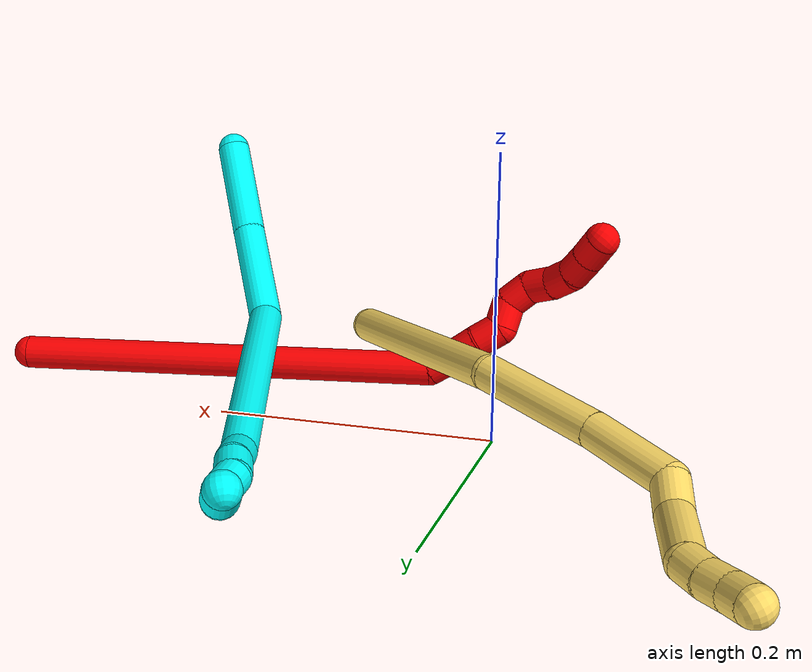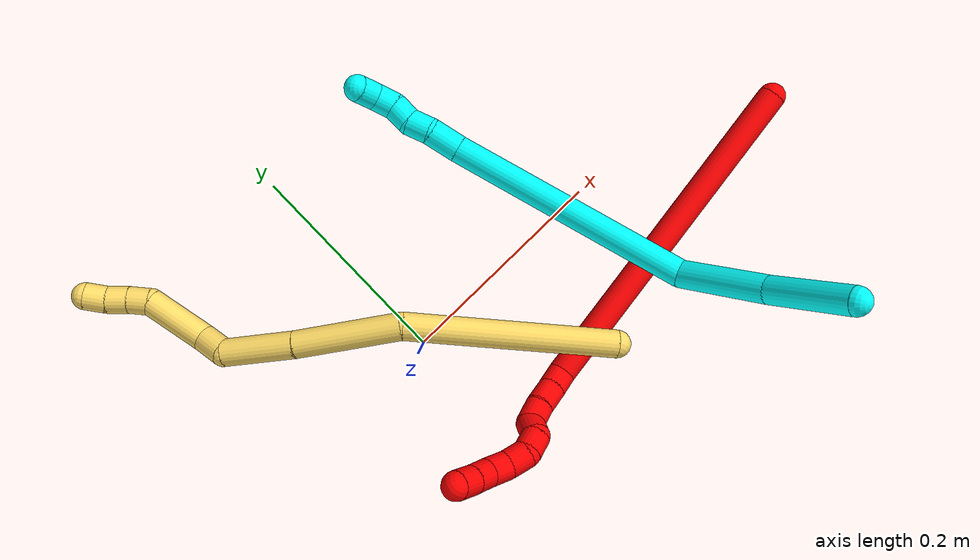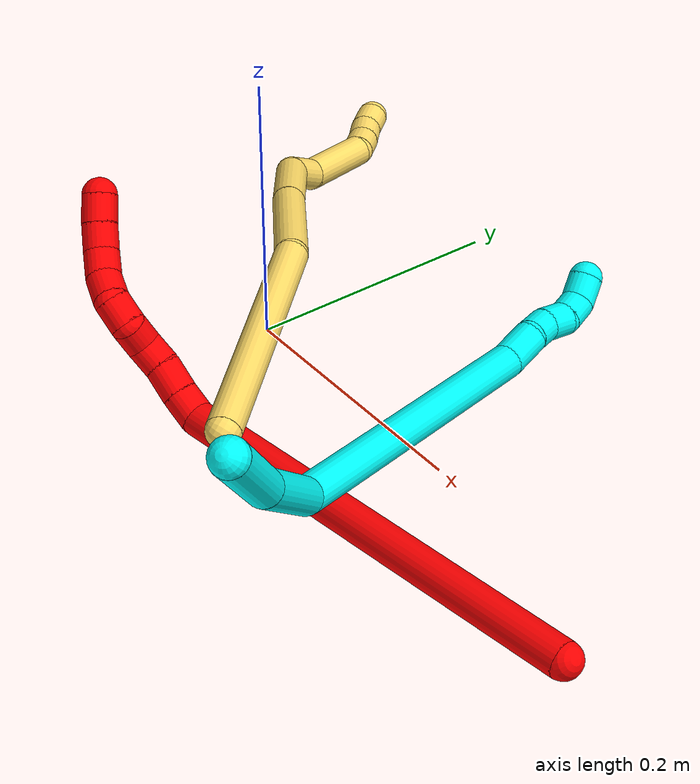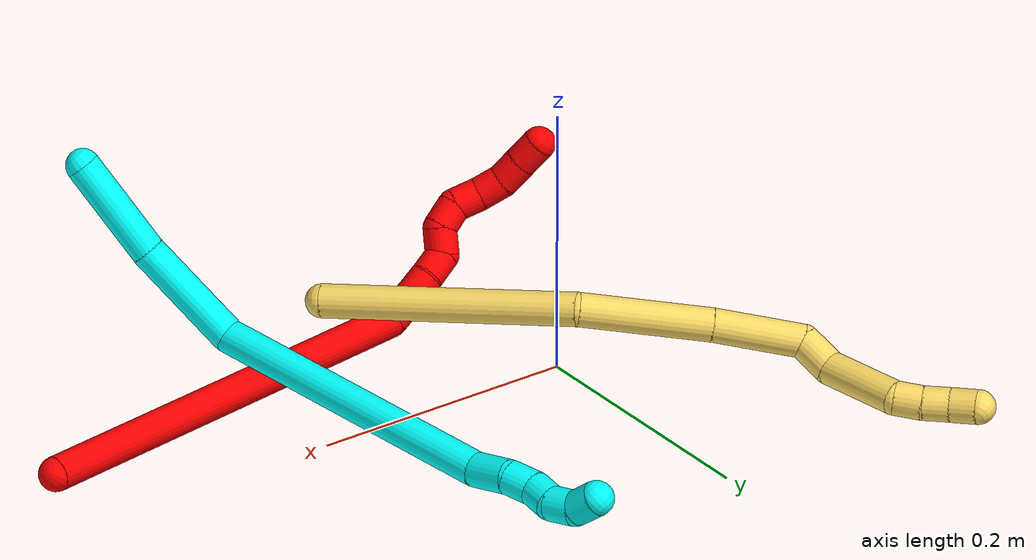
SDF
<sdf version="1.7">
 <world name="default">
  <model name="2">
   <static>0</static>
   <link name="2">
    <collision name="collision-cylinder-e_1_1_4">
     <pose>-0.099269 -0.007704 -0.123444 3.07927 -0.676323 -2.96477</pose>
     <geometry><cylinder><radius>0.0125</radius><length>0.317188</length></cylinder></geometry>
     <surface>
      <friction><ode><mu>1.16</mu><mu2>1.16</mu2><slip1>0</slip1><slip2>0</slip2></ode></friction>
      <contact><ode><kp>1e+06</kp><kd>1</kd><max_vel>0</max_vel><min_depth>0.001</min_depth></ode></contact>
     </surface>
    </collision>
    <visual name="visual-cylinder-e_1_1_4">
     <pose>-0.099269 -0.007704 -0.123444 3.07927 -0.676323 -2.96477</pose>
     <geometry><cylinder><radius>0.0125</radius><length>0.317188</length></cylinder></geometry>
     <material><ambient>1 0 0 1</ambient></material>
    </visual>
    <collision name="collision-cylinder-e_2_4_5">
     <pose>-0.208018 -0.015647 -0.25033 3.07217 -1.22181 -3.04249</pose>
     <geometry><cylinder><radius>0.0125</radius><length>0.020178</length></cylinder></geometry>
     <surface>
      <friction><ode><mu>1.16</mu><mu2>1.16</mu2><slip1>0</slip1><slip2>0</slip2></ode></friction>
      <contact><ode><kp>1e+06</kp><kd>1</kd><max_vel>0</max_vel><min_depth>0.001</min_depth></ode></contact>
     </surface>
    </collision>
    <visual name="visual-cylinder-e_2_4_5">
     <pose>-0.208018 -0.015647 -0.25033 3.07217 -1.22181 -3.04249</pose>
     <geometry><cylinder><radius>0.0125</radius><length>0.020178</length></cylinder></geometry>
     <material><ambient>1 0 0 1</ambient></material>
    </visual>
    <collision name="collision-cylinder-e_3_5_6">
     <pose>-0.228354 -0.015614 -0.256809 -3.05229 -1.29688 3.02379</pose>
     <geometry><cylinder><radius>0.0125</radius><length>0.02255</length></cylinder></geometry>
     <surface>
      <friction><ode><mu>1.16</mu><mu2>1.16</mu2><slip1>0</slip1><slip2>0</slip2></ode></friction>
      <contact><ode><kp>1e+06</kp><kd>1</kd><max_vel>0</max_vel><min_depth>0.001</min_depth></ode></contact>
     </surface>
    </collision>
    <visual name="visual-cylinder-e_3_5_6">
     <pose>-0.228354 -0.015614 -0.256809 -3.05229 -1.29688 3.02379</pose>
     <geometry><cylinder><radius>0.0125</radius><length>0.02255</length></cylinder></geometry>
     <material><ambient>1 0 0 1</ambient></material>
    </visual>
    <collision name="collision-cylinder-e_4_6_7">
     <pose>-0.248623 -0.016423 -0.263164 2.82643 -1.21596 -2.69263</pose>
     <geometry><cylinder><radius>0.0125</radius><length>0.02008</length></cylinder></geometry>
     <surface>
      <friction><ode><mu>1.16</mu><mu2>1.16</mu2><slip1>0</slip1><slip2>0</slip2></ode></friction>
      <contact><ode><kp>1e+06</kp><kd>1</kd><max_vel>0</max_vel><min_depth>0.001</min_depth></ode></contact>
     </surface>
    </collision>
    <visual name="visual-cylinder-e_4_6_7">
     <pose>-0.248623 -0.016423 -0.263164 2.82643 -1.21596 -2.69263</pose>
     <geometry><cylinder><radius>0.0125</radius><length>0.02008</length></cylinder></geometry>
     <material><ambient>1 0 0 1</ambient></material>
    </visual>
    <collision name="collision-cylinder-e_5_7_8">
     <pose>-0.266471 -0.021397 -0.262771 0.809563 -1.00316 -0.461504</pose>
     <geometry><cylinder><radius>0.0125</radius><length>0.020003</length></cylinder></geometry>
     <surface>
      <friction><ode><mu>1.16</mu><mu2>1.16</mu2><slip1>0</slip1><slip2>0</slip2></ode></friction>
      <contact><ode><kp>1e+06</kp><kd>1</kd><max_vel>0</max_vel><min_depth>0.001</min_depth></ode></contact>
     </surface>
    </collision>
    <visual name="visual-cylinder-e_5_7_8">
     <pose>-0.266471 -0.021397 -0.262771 0.809563 -1.00316 -0.461504</pose>
     <geometry><cylinder><radius>0.0125</radius><length>0.020003</length></cylinder></geometry>
     <material><ambient>1 0 0 1</ambient></material>
    </visual>
    <collision name="collision-cylinder-e_6_8_9">
     <pose>-0.284694 -0.025765 -0.261043 2.90639 -1.36561 -2.85308</pose>
     <geometry><cylinder><radius>0.0125</radius><length>0.02</length></cylinder></geometry>
     <surface>
      <friction><ode><mu>1.16</mu><mu2>1.16</mu2><slip1>0</slip1><slip2>0</slip2></ode></friction>
      <contact><ode><kp>1e+06</kp><kd>1</kd><max_vel>0</max_vel><min_depth>0.001</min_depth></ode></contact>
     </surface>
    </collision>
    <visual name="visual-cylinder-e_6_8_9">
     <pose>-0.284694 -0.025765 -0.261043 2.90639 -1.36561 -2.85308</pose>
     <geometry><cylinder><radius>0.0125</radius><length>0.02</length></cylinder></geometry>
     <material><ambient>1 0 0 1</ambient></material>
    </visual>
    <collision name="collision-cylinder-e_7_9_10">
     <pose>-0.302246 -0.022595 -0.268169 -2.52517 -0.888558 1.96265</pose>
     <geometry><cylinder><radius>0.0125</radius><length>0.02</length></cylinder></geometry>
     <surface>
      <friction><ode><mu>1.16</mu><mu2>1.16</mu2><slip1>0</slip1><slip2>0</slip2></ode></friction>
      <contact><ode><kp>1e+06</kp><kd>1</kd><max_vel>0</max_vel><min_depth>0.001</min_depth></ode></contact>
     </surface>
    </collision>
    <visual name="visual-cylinder-e_7_9_10">
     <pose>-0.302246 -0.022595 -0.268169 -2.52517 -0.888558 1.96265</pose>
     <geometry><cylinder><radius>0.0125</radius><length>0.02</length></cylinder></geometry>
     <material><ambient>1 0 0 1</ambient></material>
    </visual>
    <collision name="collision-cylinder-e_8_10_11">
     <pose>-0.318296 -0.014059 -0.276032 -2.0781 -0.977022 1.46946</pose>
     <geometry><cylinder><radius>0.0125</radius><length>0.02</length></cylinder></geometry>
     <surface>
      <friction><ode><mu>1.16</mu><mu2>1.16</mu2><slip1>0</slip1><slip2>0</slip2></ode></friction>
      <contact><ode><kp>1e+06</kp><kd>1</kd><max_vel>0</max_vel><min_depth>0.001</min_depth></ode></contact>
     </surface>
    </collision>
    <visual name="visual-cylinder-e_8_10_11">
     <pose>-0.318296 -0.014059 -0.276032 -2.0781 -0.977022 1.46946</pose>
     <geometry><cylinder><radius>0.0125</radius><length>0.02</length></cylinder></geometry>
     <material><ambient>1 0 0 1</ambient></material>
    </visual>
    <collision name="collision-cylinder-e_9_11_12">
     <pose>-0.335699 -0.005065 -0.278477 -1.50433 -1.14694 1.08717</pose>
     <geometry><cylinder><radius>0.0125</radius><length>0.02</length></cylinder></geometry>
     <surface>
      <friction><ode><mu>1.16</mu><mu2>1.16</mu2><slip1>0</slip1><slip2>0</slip2></ode></friction>
      <contact><ode><kp>1e+06</kp><kd>1</kd><max_vel>0</max_vel><min_depth>0.001</min_depth></ode></contact>
     </surface>
    </collision>
    <visual name="visual-cylinder-e_9_11_12">
     <pose>-0.335699 -0.005065 -0.278477 -1.50433 -1.14694 1.08717</pose>
     <geometry><cylinder><radius>0.0125</radius><length>0.02</length></cylinder></geometry>
     <material><ambient>1 0 0 1</ambient></material>
    </visual>
    <collision name="collision-cylinder-e_10_12_2">
     <pose>-0.353707 0.003549 -0.277441 -1.40308 -1.09566 0.951953</pose>
     <geometry><cylinder><radius>0.0125</radius><length>0.02</length></cylinder></geometry>
     <surface>
      <friction><ode><mu>1.16</mu><mu2>1.16</mu2><slip1>0</slip1><slip2>0</slip2></ode></friction>
      <contact><ode><kp>1e+06</kp><kd>1</kd><max_vel>0</max_vel><min_depth>0.001</min_depth></ode></contact>
     </surface>
    </collision>
    <visual name="visual-cylinder-e_10_12_2">
     <pose>-0.353707 0.003549 -0.277441 -1.40308 -1.09566 0.951953</pose>
     <geometry><cylinder><radius>0.0125</radius><length>0.02</length></cylinder></geometry>
     <material><ambient>1 0 0 1</ambient></material>
    </visual>
    <collision name="collision-sphere-2">
     <pose>-0.3626 0.00806 -0.276677 0 -0 0</pose>
     <geometry><sphere><radius>0.0125</radius></sphere></geometry>
     <surface>
      <friction><ode><mu>1.16</mu><mu2>1.16</mu2><slip1>0</slip1><slip2>0</slip2></ode></friction>
      <contact><ode><kp>1e+06</kp><kd>1</kd><max_vel>0</max_vel><min_depth>0.001</min_depth></ode></contact>
     </surface>
    </collision>
    <visual name="visual-sphere-2">
     <pose>-0.3626 0.00806 -0.276677 0 -0 0</pose>
     <geometry><sphere><radius>0.0125</radius></sphere></geometry>
     <material><ambient>1 0 0 1</ambient></material>
    </visual>
    <collision name="collision-sphere-12">
     <pose>-0.344815 -0.000961 -0.278204 0 -0 0</pose>
     <geometry><sphere><radius>0.0125</radius></sphere></geometry>
     <surface>
      <friction><ode><mu>1.16</mu><mu2>1.16</mu2><slip1>0</slip1><slip2>0</slip2></ode></friction>
      <contact><ode><kp>1e+06</kp><kd>1</kd><max_vel>0</max_vel><min_depth>0.001</min_depth></ode></contact>
     </surface>
    </collision>
    <visual name="visual-sphere-12">
     <pose>-0.344815 -0.000961 -0.278204 0 -0 0</pose>
     <geometry><sphere><radius>0.0125</radius></sphere></geometry>
     <material><ambient>1 0 0 1</ambient></material>
    </visual>
    <collision name="collision-sphere-11">
     <pose>-0.326584 -0.009169 -0.278751 0 -0 0</pose>
     <geometry><sphere><radius>0.0125</radius></sphere></geometry>
     <surface>
      <friction><ode><mu>1.16</mu><mu2>1.16</mu2><slip1>0</slip1><slip2>0</slip2></ode></friction>
      <contact><ode><kp>1e+06</kp><kd>1</kd><max_vel>0</max_vel><min_depth>0.001</min_depth></ode></contact>
     </surface>
    </collision>
    <visual name="visual-sphere-11">
     <pose>-0.326584 -0.009169 -0.278751 0 -0 0</pose>
     <geometry><sphere><radius>0.0125</radius></sphere></geometry>
     <material><ambient>1 0 0 1</ambient></material>
    </visual>
    <collision name="collision-sphere-10">
     <pose>-0.310007 -0.018949 -0.273314 0 -0 0</pose>
     <geometry><sphere><radius>0.0125</radius></sphere></geometry>
     <surface>
      <friction><ode><mu>1.16</mu><mu2>1.16</mu2><slip1>0</slip1><slip2>0</slip2></ode></friction>
      <contact><ode><kp>1e+06</kp><kd>1</kd><max_vel>0</max_vel><min_depth>0.001</min_depth></ode></contact>
     </surface>
    </collision>
    <visual name="visual-sphere-10">
     <pose>-0.310007 -0.018949 -0.273314 0 -0 0</pose>
     <geometry><sphere><radius>0.0125</radius></sphere></geometry>
     <material><ambient>1 0 0 1</ambient></material>
    </visual>
    <collision name="collision-sphere-9">
     <pose>-0.294484 -0.02624 -0.263024 0 -0 0</pose>
     <geometry><sphere><radius>0.0125</radius></sphere></geometry>
     <surface>
      <friction><ode><mu>1.16</mu><mu2>1.16</mu2><slip1>0</slip1><slip2>0</slip2></ode></friction>
      <contact><ode><kp>1e+06</kp><kd>1</kd><max_vel>0</max_vel><min_depth>0.001</min_depth></ode></contact>
     </surface>
    </collision>
    <visual name="visual-sphere-9">
     <pose>-0.294484 -0.02624 -0.263024 0 -0 0</pose>
     <geometry><sphere><radius>0.0125</radius></sphere></geometry>
     <material><ambient>1 0 0 1</ambient></material>
    </visual>
    <collision name="collision-sphere-4">
     <pose>-0.198538 -0.015407 -0.246888 0 -0 0</pose>
     <geometry><sphere><radius>0.0125</radius></sphere></geometry>
     <surface>
      <friction><ode><mu>1.16</mu><mu2>1.16</mu2><slip1>0</slip1><slip2>0</slip2></ode></friction>
      <contact><ode><kp>1e+06</kp><kd>1</kd><max_vel>0</max_vel><min_depth>0.001</min_depth></ode></contact>
     </surface>
    </collision>
    <visual name="visual-sphere-4">
     <pose>-0.198538 -0.015407 -0.246888 0 -0 0</pose>
     <geometry><sphere><radius>0.0125</radius></sphere></geometry>
     <material><ambient>1 0 0 1</ambient></material>
    </visual>
    <collision name="collision-sphere-1">
     <geometry><sphere><radius>0.0125</radius></sphere></geometry>
     <surface>
      <friction><ode><mu>1.16</mu><mu2>1.16</mu2><slip1>0</slip1><slip2>0</slip2></ode></friction>
      <contact><ode><kp>1e+06</kp><kd>1</kd><max_vel>0</max_vel><min_depth>0.001</min_depth></ode></contact>
     </surface>
    </collision>
    <visual name="visual-sphere-1">
     <geometry><sphere><radius>0.0125</radius></sphere></geometry>
     <material><ambient>1 0 0 1</ambient></material>
    </visual>
    <collision name="collision-sphere-8">
     <pose>-0.274903 -0.02529 -0.259062 0 -0 0</pose>
     <geometry><sphere><radius>0.0125</radius></sphere></geometry>
     <surface>
      <friction><ode><mu>1.16</mu><mu2>1.16</mu2><slip1>0</slip1><slip2>0</slip2></ode></friction>
      <contact><ode><kp>1e+06</kp><kd>1</kd><max_vel>0</max_vel><min_depth>0.001</min_depth></ode></contact>
     </surface>
    </collision>
    <visual name="visual-sphere-8">
     <pose>-0.274903 -0.02529 -0.259062 0 -0 0</pose>
     <geometry><sphere><radius>0.0125</radius></sphere></geometry>
     <material><ambient>1 0 0 1</ambient></material>
    </visual>
    <collision name="collision-sphere-5">
     <pose>-0.217499 -0.015886 -0.253772 0 -0 0</pose>
     <geometry><sphere><radius>0.0125</radius></sphere></geometry>
     <surface>
      <friction><ode><mu>1.16</mu><mu2>1.16</mu2><slip1>0</slip1><slip2>0</slip2></ode></friction>
      <contact><ode><kp>1e+06</kp><kd>1</kd><max_vel>0</max_vel><min_depth>0.001</min_depth></ode></contact>
     </surface>
    </collision>
    <visual name="visual-sphere-5">
     <pose>-0.217499 -0.015886 -0.253772 0 -0 0</pose>
     <geometry><sphere><radius>0.0125</radius></sphere></geometry>
     <material><ambient>1 0 0 1</ambient></material>
    </visual>
    <collision name="collision-sphere-6">
     <pose>-0.239209 -0.015342 -0.259847 0 -0 0</pose>
     <geometry><sphere><radius>0.0125</radius></sphere></geometry>
     <surface>
      <friction><ode><mu>1.16</mu><mu2>1.16</mu2><slip1>0</slip1><slip2>0</slip2></ode></friction>
      <contact><ode><kp>1e+06</kp><kd>1</kd><max_vel>0</max_vel><min_depth>0.001</min_depth></ode></contact>
     </surface>
    </collision>
    <visual name="visual-sphere-6">
     <pose>-0.239209 -0.015342 -0.259847 0 -0 0</pose>
     <geometry><sphere><radius>0.0125</radius></sphere></geometry>
     <material><ambient>1 0 0 1</ambient></material>
    </visual>
    <collision name="collision-sphere-7">
     <pose>-0.258038 -0.017504 -0.26648 0 -0 0</pose>
     <geometry><sphere><radius>0.0125</radius></sphere></geometry>
     <surface>
      <friction><ode><mu>1.16</mu><mu2>1.16</mu2><slip1>0</slip1><slip2>0</slip2></ode></friction>
      <contact><ode><kp>1e+06</kp><kd>1</kd><max_vel>0</max_vel><min_depth>0.001</min_depth></ode></contact>
     </surface>
    </collision>
    <visual name="visual-sphere-7">
     <pose>-0.258038 -0.017504 -0.26648 0 -0 0</pose>
     <geometry><sphere><radius>0.0125</radius></sphere></geometry>
     <material><ambient>1 0 0 1</ambient></material>
    </visual>
    <inertial>
     <pose>-0.166099 -0.010296 -0.175522 0 -0 0</pose>
     <mass>0.5</mass>
     <inertia>
      <ixx>-0.002445</ixx>
      <ixy>0</ixy>
      <ixz>0</ixz>
      <iyy>0.002291</iyy>
      <iyz>0</iyz>
      <izz>0.001791</izz>
     </inertia>
    </inertial>
   </link>
   <pose>0.385461 -0.059298 0.011498 0.030111 0.90186 0.124787</pose>
  </model>
  <model name="3">
   <static>0</static>
   <link name="3">
    <collision name="collision-cylinder-e_1_1_4">
     <pose>0.003171 -0.004151 -0.038146 3.0332 0.082456 1.30025</pose>
     <geometry><cylinder><radius>0.0125</radius><length>0.077004</length></cylinder></geometry>
     <surface>
      <friction><ode><mu>1.16</mu><mu2>1.16</mu2><slip1>0</slip1><slip2>0</slip2></ode></friction>
      <contact><ode><kp>1e+06</kp><kd>1</kd><max_vel>0</max_vel><min_depth>0.001</min_depth></ode></contact>
     </surface>
    </collision>
    <visual name="visual-cylinder-e_1_1_4">
     <pose>0.003171 -0.004151 -0.038146 3.0332 0.082456 1.30025</pose>
     <geometry><cylinder><radius>0.0125</radius><length>0.077004</length></cylinder></geometry>
     <material><ambient>0.003922 1 0.996078 1</ambient></material>
    </visual>
    <collision name="collision-cylinder-e_2_4_5">
     <pose>0.004731 -0.008436 -0.117848 3.13836 -0.038745 -2.97497</pose>
     <geometry><cylinder><radius>0.0125</radius><length>0.083175</length></cylinder></geometry>
     <surface>
      <friction><ode><mu>1.16</mu><mu2>1.16</mu2><slip1>0</slip1><slip2>0</slip2></ode></friction>
      <contact><ode><kp>1e+06</kp><kd>1</kd><max_vel>0</max_vel><min_depth>0.001</min_depth></ode></contact>
     </surface>
    </collision>
    <visual name="visual-cylinder-e_2_4_5">
     <pose>0.004731 -0.008436 -0.117848 3.13836 -0.038745 -2.97497</pose>
     <geometry><cylinder><radius>0.0125</radius><length>0.083175</length></cylinder></geometry>
     <material><ambient>0.003922 1 0.996078 1</ambient></material>
    </visual>
    <collision name="collision-cylinder-e_3_5_6">
     <pose>-0.037964 0.050481 -0.248231 -2.55489 -0.36766 1.10352</pose>
     <geometry><cylinder><radius>0.0125</radius><length>0.228608</length></cylinder></geometry>
     <surface>
      <friction><ode><mu>1.16</mu><mu2>1.16</mu2><slip1>0</slip1><slip2>0</slip2></ode></friction>
      <contact><ode><kp>1e+06</kp><kd>1</kd><max_vel>0</max_vel><min_depth>0.001</min_depth></ode></contact>
     </surface>
    </collision>
    <visual name="visual-cylinder-e_3_5_6">
     <pose>-0.037964 0.050481 -0.248231 -2.55489 -0.36766 1.10352</pose>
     <geometry><cylinder><radius>0.0125</radius><length>0.228608</length></cylinder></geometry>
     <material><ambient>0.003922 1 0.996078 1</ambient></material>
    </visual>
    <collision name="collision-cylinder-e_4_6_7">
     <pose>-0.086915 0.119063 -0.345754 -2.31036 -0.547523 1.13336</pose>
     <geometry><cylinder><radius>0.0125</radius><length>0.030219</length></cylinder></geometry>
     <surface>
      <friction><ode><mu>1.16</mu><mu2>1.16</mu2><slip1>0</slip1><slip2>0</slip2></ode></friction>
      <contact><ode><kp>1e+06</kp><kd>1</kd><max_vel>0</max_vel><min_depth>0.001</min_depth></ode></contact>
     </surface>
    </collision>
    <visual name="visual-cylinder-e_4_6_7">
     <pose>-0.086915 0.119063 -0.345754 -2.31036 -0.547523 1.13336</pose>
     <geometry><cylinder><radius>0.0125</radius><length>0.030219</length></cylinder></geometry>
     <material><ambient>0.003922 1 0.996078 1</ambient></material>
    </visual>
    <collision name="collision-cylinder-e_5_7_8">
     <pose>-0.099226 0.133405 -0.36265 -2.61104 -0.437307 1.37113</pose>
     <geometry><cylinder><radius>0.0125</radius><length>0.020993</length></cylinder></geometry>
     <surface>
      <friction><ode><mu>1.16</mu><mu2>1.16</mu2><slip1>0</slip1><slip2>0</slip2></ode></friction>
      <contact><ode><kp>1e+06</kp><kd>1</kd><max_vel>0</max_vel><min_depth>0.001</min_depth></ode></contact>
     </surface>
    </collision>
    <visual name="visual-cylinder-e_5_7_8">
     <pose>-0.099226 0.133405 -0.36265 -2.61104 -0.437307 1.37113</pose>
     <geometry><cylinder><radius>0.0125</radius><length>0.020993</length></cylinder></geometry>
     <material><ambient>0.003922 1 0.996078 1</ambient></material>
    </visual>
    <collision name="collision-cylinder-e_6_8_9">
     <pose>-0.105355 0.145247 -0.377762 -2.34755 -0.169238 0.399213</pose>
     <geometry><cylinder><radius>0.0125</radius><length>0.02</length></cylinder></geometry>
     <surface>
      <friction><ode><mu>1.16</mu><mu2>1.16</mu2><slip1>0</slip1><slip2>0</slip2></ode></friction>
      <contact><ode><kp>1e+06</kp><kd>1</kd><max_vel>0</max_vel><min_depth>0.001</min_depth></ode></contact>
     </surface>
    </collision>
    <visual name="visual-cylinder-e_6_8_9">
     <pose>-0.105355 0.145247 -0.377762 -2.34755 -0.169238 0.399213</pose>
     <geometry><cylinder><radius>0.0125</radius><length>0.02</length></cylinder></geometry>
     <material><ambient>0.003922 1 0.996078 1</ambient></material>
    </visual>
    <collision name="collision-cylinder-e_7_9_10">
     <pose>-0.112604 0.157768 -0.390907 -2.41956 -0.590095 1.35549</pose>
     <geometry><cylinder><radius>0.0125</radius><length>0.02</length></cylinder></geometry>
     <surface>
      <friction><ode><mu>1.16</mu><mu2>1.16</mu2><slip1>0</slip1><slip2>0</slip2></ode></friction>
      <contact><ode><kp>1e+06</kp><kd>1</kd><max_vel>0</max_vel><min_depth>0.001</min_depth></ode></contact>
     </surface>
    </collision>
    <visual name="visual-cylinder-e_7_9_10">
     <pose>-0.112604 0.157768 -0.390907 -2.41956 -0.590095 1.35549</pose>
     <geometry><cylinder><radius>0.0125</radius><length>0.02</length></cylinder></geometry>
     <material><ambient>0.003922 1 0.996078 1</ambient></material>
    </visual>
    <collision name="collision-cylinder-e_8_10_2">
     <pose>-0.126388 0.168756 -0.398637 -1.83633 -0.964861 1.20138</pose>
     <geometry><cylinder><radius>0.0125</radius><length>0.02</length></cylinder></geometry>
     <surface>
      <friction><ode><mu>1.16</mu><mu2>1.16</mu2><slip1>0</slip1><slip2>0</slip2></ode></friction>
      <contact><ode><kp>1e+06</kp><kd>1</kd><max_vel>0</max_vel><min_depth>0.001</min_depth></ode></contact>
     </surface>
    </collision>
    <visual name="visual-cylinder-e_8_10_2">
     <pose>-0.126388 0.168756 -0.398637 -1.83633 -0.964861 1.20138</pose>
     <geometry><cylinder><radius>0.0125</radius><length>0.02</length></cylinder></geometry>
     <material><ambient>0.003922 1 0.996078 1</ambient></material>
    </visual>
    <collision name="collision-sphere-2">
     <pose>-0.134608 0.174252 -0.400132 0 -0 0</pose>
     <geometry><sphere><radius>0.0125</radius></sphere></geometry>
     <surface>
      <friction><ode><mu>1.16</mu><mu2>1.16</mu2><slip1>0</slip1><slip2>0</slip2></ode></friction>
      <contact><ode><kp>1e+06</kp><kd>1</kd><max_vel>0</max_vel><min_depth>0.001</min_depth></ode></contact>
     </surface>
    </collision>
    <visual name="visual-sphere-2">
     <pose>-0.134608 0.174252 -0.400132 0 -0 0</pose>
     <geometry><sphere><radius>0.0125</radius></sphere></geometry>
     <material><ambient>0.003922 1 0.996078 1</ambient></material>
    </visual>
    <collision name="collision-sphere-10">
     <pose>-0.118169 0.16326 -0.397142 0 -0 0</pose>
     <geometry><sphere><radius>0.0125</radius></sphere></geometry>
     <surface>
      <friction><ode><mu>1.16</mu><mu2>1.16</mu2><slip1>0</slip1><slip2>0</slip2></ode></friction>
      <contact><ode><kp>1e+06</kp><kd>1</kd><max_vel>0</max_vel><min_depth>0.001</min_depth></ode></contact>
     </surface>
    </collision>
    <visual name="visual-sphere-10">
     <pose>-0.118169 0.16326 -0.397142 0 -0 0</pose>
     <geometry><sphere><radius>0.0125</radius></sphere></geometry>
     <material><ambient>0.003922 1 0.996078 1</ambient></material>
    </visual>
    <collision name="collision-sphere-9">
     <pose>-0.10704 0.152277 -0.384671 0 -0 0</pose>
     <geometry><sphere><radius>0.0125</radius></sphere></geometry>
     <surface>
      <friction><ode><mu>1.16</mu><mu2>1.16</mu2><slip1>0</slip1><slip2>0</slip2></ode></friction>
      <contact><ode><kp>1e+06</kp><kd>1</kd><max_vel>0</max_vel><min_depth>0.001</min_depth></ode></contact>
     </surface>
    </collision>
    <visual name="visual-sphere-9">
     <pose>-0.10704 0.152277 -0.384671 0 -0 0</pose>
     <geometry><sphere><radius>0.0125</radius></sphere></geometry>
     <material><ambient>0.003922 1 0.996078 1</ambient></material>
    </visual>
    <collision name="collision-sphere-4">
     <pose>0.006342 -0.008302 -0.076292 0 -0 0</pose>
     <geometry><sphere><radius>0.0125</radius></sphere></geometry>
     <surface>
      <friction><ode><mu>1.16</mu><mu2>1.16</mu2><slip1>0</slip1><slip2>0</slip2></ode></friction>
      <contact><ode><kp>1e+06</kp><kd>1</kd><max_vel>0</max_vel><min_depth>0.001</min_depth></ode></contact>
     </surface>
    </collision>
    <visual name="visual-sphere-4">
     <pose>0.006342 -0.008302 -0.076292 0 -0 0</pose>
     <geometry><sphere><radius>0.0125</radius></sphere></geometry>
     <material><ambient>0.003922 1 0.996078 1</ambient></material>
    </visual>
    <collision name="collision-sphere-1">
     <geometry><sphere><radius>0.0125</radius></sphere></geometry>
     <surface>
      <friction><ode><mu>1.16</mu><mu2>1.16</mu2><slip1>0</slip1><slip2>0</slip2></ode></friction>
      <contact><ode><kp>1e+06</kp><kd>1</kd><max_vel>0</max_vel><min_depth>0.001</min_depth></ode></contact>
     </surface>
    </collision>
    <visual name="visual-sphere-1">
     <geometry><sphere><radius>0.0125</radius></sphere></geometry>
     <material><ambient>0.003922 1 0.996078 1</ambient></material>
    </visual>
    <collision name="collision-sphere-8">
     <pose>-0.103671 0.138217 -0.370852 0 -0 0</pose>
     <geometry><sphere><radius>0.0125</radius></sphere></geometry>
     <surface>
      <friction><ode><mu>1.16</mu><mu2>1.16</mu2><slip1>0</slip1><slip2>0</slip2></ode></friction>
      <contact><ode><kp>1e+06</kp><kd>1</kd><max_vel>0</max_vel><min_depth>0.001</min_depth></ode></contact>
     </surface>
    </collision>
    <visual name="visual-sphere-8">
     <pose>-0.103671 0.138217 -0.370852 0 -0 0</pose>
     <geometry><sphere><radius>0.0125</radius></sphere></geometry>
     <material><ambient>0.003922 1 0.996078 1</ambient></material>
    </visual>
    <collision name="collision-sphere-5">
     <pose>0.00312 -0.008571 -0.159404 0 -0 0</pose>
     <geometry><sphere><radius>0.0125</radius></sphere></geometry>
     <surface>
      <friction><ode><mu>1.16</mu><mu2>1.16</mu2><slip1>0</slip1><slip2>0</slip2></ode></friction>
      <contact><ode><kp>1e+06</kp><kd>1</kd><max_vel>0</max_vel><min_depth>0.001</min_depth></ode></contact>
     </surface>
    </collision>
    <visual name="visual-sphere-5">
     <pose>0.00312 -0.008571 -0.159404 0 -0 0</pose>
     <geometry><sphere><radius>0.0125</radius></sphere></geometry>
     <material><ambient>0.003922 1 0.996078 1</ambient></material>
    </visual>
    <collision name="collision-sphere-6">
     <pose>-0.079049 0.109532 -0.337059 0 -0 0</pose>
     <geometry><sphere><radius>0.0125</radius></sphere></geometry>
     <surface>
      <friction><ode><mu>1.16</mu><mu2>1.16</mu2><slip1>0</slip1><slip2>0</slip2></ode></friction>
      <contact><ode><kp>1e+06</kp><kd>1</kd><max_vel>0</max_vel><min_depth>0.001</min_depth></ode></contact>
     </surface>
    </collision>
    <visual name="visual-sphere-6">
     <pose>-0.079049 0.109532 -0.337059 0 -0 0</pose>
     <geometry><sphere><radius>0.0125</radius></sphere></geometry>
     <material><ambient>0.003922 1 0.996078 1</ambient></material>
    </visual>
    <collision name="collision-sphere-7">
     <pose>-0.09478 0.128594 -0.354449 0 -0 0</pose>
     <geometry><sphere><radius>0.0125</radius></sphere></geometry>
     <surface>
      <friction><ode><mu>1.16</mu><mu2>1.16</mu2><slip1>0</slip1><slip2>0</slip2></ode></friction>
      <contact><ode><kp>1e+06</kp><kd>1</kd><max_vel>0</max_vel><min_depth>0.001</min_depth></ode></contact>
     </surface>
    </collision>
    <visual name="visual-sphere-7">
     <pose>-0.09478 0.128594 -0.354449 0 -0 0</pose>
     <geometry><sphere><radius>0.0125</radius></sphere></geometry>
     <material><ambient>0.003922 1 0.996078 1</ambient></material>
    </visual>
    <inertial>
     <pose>-0.039276 0.052706 -0.22179 0 -0 0</pose>
     <mass>0.5</mass>
     <inertia>
      <ixx>0.00125</ixx>
      <ixy>0</ixy>
      <ixz>0</ixz>
      <iyy>0.00073</iyy>
      <iyz>0</iyz>
      <izz>-0.000187</izz>
     </inertia>
    </inertial>
   </link>
   <pose>0.267497 -0.204973 0.156606 0.491975 0.661149 -0.320941</pose>
  </model>
  <model name="5">
   <static>0</static>
   <link name="5">
    <collision name="collision-cylinder-e_1_1_4">
     <pose>-0.074131 0.057213 -0.014972 -1.82675 -0.897413 1.11528</pose>
     <geometry><cylinder><radius>0.0125</radius><length>0.189661</length></cylinder></geometry>
     <surface>
      <friction><ode><mu>1.16</mu><mu2>1.16</mu2><slip1>0</slip1><slip2>0</slip2></ode></friction>
      <contact><ode><kp>1e+06</kp><kd>1</kd><max_vel>0</max_vel><min_depth>0.001</min_depth></ode></contact>
     </surface>
    </collision>
    <visual name="visual-cylinder-e_1_1_4">
     <pose>-0.074131 0.057213 -0.014972 -1.82675 -0.897413 1.11528</pose>
     <geometry><cylinder><radius>0.0125</radius><length>0.189661</length></cylinder></geometry>
     <material><ambient>1 0.858824 0.4 1</ambient></material>
    </visual>
    <collision name="collision-cylinder-e_2_4_5">
     <pose>-0.174113 0.152989 -0.044132 -1.92332 -0.561572 0.784017</pose>
     <geometry><cylinder><radius>0.0125</radius><length>0.097093</length></cylinder></geometry>
     <surface>
      <friction><ode><mu>1.16</mu><mu2>1.16</mu2><slip1>0</slip1><slip2>0</slip2></ode></friction>
      <contact><ode><kp>1e+06</kp><kd>1</kd><max_vel>0</max_vel><min_depth>0.001</min_depth></ode></contact>
     </surface>
    </collision>
    <visual name="visual-cylinder-e_2_4_5">
     <pose>-0.174113 0.152989 -0.044132 -1.92332 -0.561572 0.784017</pose>
     <geometry><cylinder><radius>0.0125</radius><length>0.097093</length></cylinder></geometry>
     <material><ambient>1 0.858824 0.4 1</ambient></material>
    </visual>
    <collision name="collision-cylinder-e_3_5_6">
     <pose>-0.217629 0.218627 -0.065858 -1.84238 -0.561156 0.725232</pose>
     <geometry><cylinder><radius>0.0125</radius><length>0.066389</length></cylinder></geometry>
     <surface>
      <friction><ode><mu>1.16</mu><mu2>1.16</mu2><slip1>0</slip1><slip2>0</slip2></ode></friction>
      <contact><ode><kp>1e+06</kp><kd>1</kd><max_vel>0</max_vel><min_depth>0.001</min_depth></ode></contact>
     </surface>
    </collision>
    <visual name="visual-cylinder-e_3_5_6">
     <pose>-0.217629 0.218627 -0.065858 -1.84238 -0.561156 0.725232</pose>
     <geometry><cylinder><radius>0.0125</radius><length>0.066389</length></cylinder></geometry>
     <material><ambient>1 0.858824 0.4 1</ambient></material>
    </visual>
    <collision name="collision-cylinder-e_4_6_7">
     <pose>-0.241371 0.256426 -0.067236 -1.04941 -0.456631 0.267396</pose>
     <geometry><cylinder><radius>0.0125</radius><length>0.027562</length></cylinder></geometry>
     <surface>
      <friction><ode><mu>1.16</mu><mu2>1.16</mu2><slip1>0</slip1><slip2>0</slip2></ode></friction>
      <contact><ode><kp>1e+06</kp><kd>1</kd><max_vel>0</max_vel><min_depth>0.001</min_depth></ode></contact>
     </surface>
    </collision>
    <visual name="visual-cylinder-e_4_6_7">
     <pose>-0.241371 0.256426 -0.067236 -1.04941 -0.456631 0.267396</pose>
     <geometry><cylinder><radius>0.0125</radius><length>0.027562</length></cylinder></geometry>
     <material><ambient>1 0.858824 0.4 1</ambient></material>
    </visual>
    <collision name="collision-cylinder-e_5_7_8">
     <pose>-0.270693 0.282258 -0.050856 -0.976021 -0.90552 0.505423</pose>
     <geometry><cylinder><radius>0.0125</radius><length>0.059094</length></cylinder></geometry>
     <surface>
      <friction><ode><mu>1.16</mu><mu2>1.16</mu2><slip1>0</slip1><slip2>0</slip2></ode></friction>
      <contact><ode><kp>1e+06</kp><kd>1</kd><max_vel>0</max_vel><min_depth>0.001</min_depth></ode></contact>
     </surface>
    </collision>
    <visual name="visual-cylinder-e_5_7_8">
     <pose>-0.270693 0.282258 -0.050856 -0.976021 -0.90552 0.505423</pose>
     <geometry><cylinder><radius>0.0125</radius><length>0.059094</length></cylinder></geometry>
     <material><ambient>1 0.858824 0.4 1</ambient></material>
    </visual>
    <collision name="collision-cylinder-e_6_8_9">
     <pose>-0.300863 0.304529 -0.041516 -1.69305 -0.764627 0.853222</pose>
     <geometry><cylinder><radius>0.0125</radius><length>0.020003</length></cylinder></geometry>
     <surface>
      <friction><ode><mu>1.16</mu><mu2>1.16</mu2><slip1>0</slip1><slip2>0</slip2></ode></friction>
      <contact><ode><kp>1e+06</kp><kd>1</kd><max_vel>0</max_vel><min_depth>0.001</min_depth></ode></contact>
     </surface>
    </collision>
    <visual name="visual-cylinder-e_6_8_9">
     <pose>-0.300863 0.304529 -0.041516 -1.69305 -0.764627 0.853222</pose>
     <geometry><cylinder><radius>0.0125</radius><length>0.020003</length></cylinder></geometry>
     <material><ambient>1 0.858824 0.4 1</ambient></material>
    </visual>
    <collision name="collision-cylinder-e_7_9_10">
     <pose>-0.314892 0.318444 -0.044414 -1.86124 -0.789505 1.02</pose>
     <geometry><cylinder><radius>0.0125</radius><length>0.020013</length></cylinder></geometry>
     <surface>
      <friction><ode><mu>1.16</mu><mu2>1.16</mu2><slip1>0</slip1><slip2>0</slip2></ode></friction>
      <contact><ode><kp>1e+06</kp><kd>1</kd><max_vel>0</max_vel><min_depth>0.001</min_depth></ode></contact>
     </surface>
    </collision>
    <visual name="visual-cylinder-e_7_9_10">
     <pose>-0.314892 0.318444 -0.044414 -1.86124 -0.789505 1.02</pose>
     <geometry><cylinder><radius>0.0125</radius><length>0.020013</length></cylinder></geometry>
     <material><ambient>1 0.858824 0.4 1</ambient></material>
    </visual>
    <collision name="collision-cylinder-e_8_10_2">
     <pose>-0.33015 0.331086 -0.047254 -1.70938 -0.940525 1.05732</pose>
     <geometry><cylinder><radius>0.0125</radius><length>0.020185</length></cylinder></geometry>
     <surface>
      <friction><ode><mu>1.16</mu><mu2>1.16</mu2><slip1>0</slip1><slip2>0</slip2></ode></friction>
      <contact><ode><kp>1e+06</kp><kd>1</kd><max_vel>0</max_vel><min_depth>0.001</min_depth></ode></contact>
     </surface>
    </collision>
    <visual name="visual-cylinder-e_8_10_2">
     <pose>-0.33015 0.331086 -0.047254 -1.70938 -0.940525 1.05732</pose>
     <geometry><cylinder><radius>0.0125</radius><length>0.020185</length></cylinder></geometry>
     <material><ambient>1 0.858824 0.4 1</ambient></material>
    </visual>
    <collision name="collision-sphere-2">
     <pose>-0.338303 0.336977 -0.048076 0 -0 0</pose>
     <geometry><sphere><radius>0.0125</radius></sphere></geometry>
     <surface>
      <friction><ode><mu>1.16</mu><mu2>1.16</mu2><slip1>0</slip1><slip2>0</slip2></ode></friction>
      <contact><ode><kp>1e+06</kp><kd>1</kd><max_vel>0</max_vel><min_depth>0.001</min_depth></ode></contact>
     </surface>
    </collision>
    <visual name="visual-sphere-2">
     <pose>-0.338303 0.336977 -0.048076 0 -0 0</pose>
     <geometry><sphere><radius>0.0125</radius></sphere></geometry>
     <material><ambient>1 0.858824 0.4 1</ambient></material>
    </visual>
    <collision name="collision-sphere-10">
     <pose>-0.321996 0.325195 -0.046432 0 -0 0</pose>
     <geometry><sphere><radius>0.0125</radius></sphere></geometry>
     <surface>
      <friction><ode><mu>1.16</mu><mu2>1.16</mu2><slip1>0</slip1><slip2>0</slip2></ode></friction>
      <contact><ode><kp>1e+06</kp><kd>1</kd><max_vel>0</max_vel><min_depth>0.001</min_depth></ode></contact>
     </surface>
    </collision>
    <visual name="visual-sphere-10">
     <pose>-0.321996 0.325195 -0.046432 0 -0 0</pose>
     <geometry><sphere><radius>0.0125</radius></sphere></geometry>
     <material><ambient>1 0.858824 0.4 1</ambient></material>
    </visual>
    <collision name="collision-sphere-9">
     <pose>-0.307787 0.311693 -0.042396 0 -0 0</pose>
     <geometry><sphere><radius>0.0125</radius></sphere></geometry>
     <surface>
      <friction><ode><mu>1.16</mu><mu2>1.16</mu2><slip1>0</slip1><slip2>0</slip2></ode></friction>
      <contact><ode><kp>1e+06</kp><kd>1</kd><max_vel>0</max_vel><min_depth>0.001</min_depth></ode></contact>
     </surface>
    </collision>
    <visual name="visual-sphere-9">
     <pose>-0.307787 0.311693 -0.042396 0 -0 0</pose>
     <geometry><sphere><radius>0.0125</radius></sphere></geometry>
     <material><ambient>1 0.858824 0.4 1</ambient></material>
    </visual>
    <collision name="collision-sphere-4">
     <pose>-0.148261 0.114426 -0.029945 0 -0 0</pose>
     <geometry><sphere><radius>0.0125</radius></sphere></geometry>
     <surface>
      <friction><ode><mu>1.16</mu><mu2>1.16</mu2><slip1>0</slip1><slip2>0</slip2></ode></friction>
      <contact><ode><kp>1e+06</kp><kd>1</kd><max_vel>0</max_vel><min_depth>0.001</min_depth></ode></contact>
     </surface>
    </collision>
    <visual name="visual-sphere-4">
     <pose>-0.148261 0.114426 -0.029945 0 -0 0</pose>
     <geometry><sphere><radius>0.0125</radius></sphere></geometry>
     <material><ambient>1 0.858824 0.4 1</ambient></material>
    </visual>
    <collision name="collision-sphere-1">
     <geometry><sphere><radius>0.0125</radius></sphere></geometry>
     <surface>
      <friction><ode><mu>1.16</mu><mu2>1.16</mu2><slip1>0</slip1><slip2>0</slip2></ode></friction>
      <contact><ode><kp>1e+06</kp><kd>1</kd><max_vel>0</max_vel><min_depth>0.001</min_depth></ode></contact>
     </surface>
    </collision>
    <visual name="visual-sphere-1">
     <geometry><sphere><radius>0.0125</radius></sphere></geometry>
     <material><ambient>1 0.858824 0.4 1</ambient></material>
    </visual>
    <collision name="collision-sphere-8">
     <pose>-0.29394 0.297365 -0.040636 0 -0 0</pose>
     <geometry><sphere><radius>0.0125</radius></sphere></geometry>
     <surface>
      <friction><ode><mu>1.16</mu><mu2>1.16</mu2><slip1>0</slip1><slip2>0</slip2></ode></friction>
      <contact><ode><kp>1e+06</kp><kd>1</kd><max_vel>0</max_vel><min_depth>0.001</min_depth></ode></contact>
     </surface>
    </collision>
    <visual name="visual-sphere-8">
     <pose>-0.29394 0.297365 -0.040636 0 -0 0</pose>
     <geometry><sphere><radius>0.0125</radius></sphere></geometry>
     <material><ambient>1 0.858824 0.4 1</ambient></material>
    </visual>
    <collision name="collision-sphere-5">
     <pose>-0.199965 0.191553 -0.058319 0 -0 0</pose>
     <geometry><sphere><radius>0.0125</radius></sphere></geometry>
     <surface>
      <friction><ode><mu>1.16</mu><mu2>1.16</mu2><slip1>0</slip1><slip2>0</slip2></ode></friction>
      <contact><ode><kp>1e+06</kp><kd>1</kd><max_vel>0</max_vel><min_depth>0.001</min_depth></ode></contact>
     </surface>
    </collision>
    <visual name="visual-sphere-5">
     <pose>-0.199965 0.191553 -0.058319 0 -0 0</pose>
     <geometry><sphere><radius>0.0125</radius></sphere></geometry>
     <material><ambient>1 0.858824 0.4 1</ambient></material>
    </visual>
    <collision name="collision-sphere-6">
     <pose>-0.235294 0.2457 -0.073397 0 -0 0</pose>
     <geometry><sphere><radius>0.0125</radius></sphere></geometry>
     <surface>
      <friction><ode><mu>1.16</mu><mu2>1.16</mu2><slip1>0</slip1><slip2>0</slip2></ode></friction>
      <contact><ode><kp>1e+06</kp><kd>1</kd><max_vel>0</max_vel><min_depth>0.001</min_depth></ode></contact>
     </surface>
    </collision>
    <visual name="visual-sphere-6">
     <pose>-0.235294 0.2457 -0.073397 0 -0 0</pose>
     <geometry><sphere><radius>0.0125</radius></sphere></geometry>
     <material><ambient>1 0.858824 0.4 1</ambient></material>
    </visual>
    <collision name="collision-sphere-7">
     <pose>-0.247447 0.267152 -0.061075 0 -0 0</pose>
     <geometry><sphere><radius>0.0125</radius></sphere></geometry>
     <surface>
      <friction><ode><mu>1.16</mu><mu2>1.16</mu2><slip1>0</slip1><slip2>0</slip2></ode></friction>
      <contact><ode><kp>1e+06</kp><kd>1</kd><max_vel>0</max_vel><min_depth>0.001</min_depth></ode></contact>
     </surface>
    </collision>
    <visual name="visual-sphere-7">
     <pose>-0.247447 0.267152 -0.061075 0 -0 0</pose>
     <geometry><sphere><radius>0.0125</radius></sphere></geometry>
     <material><ambient>1 0.858824 0.4 1</ambient></material>
    </visual>
    <inertial>
     <pose>-0.174093 0.166229 -0.038057 0 -0 0</pose>
     <mass>0.5</mass>
     <inertia><ixx>0.000606</ixx><ixy>0</ixy><ixz>0</ixz><iyy>0.00078</iyy><iyz>0</iyz><izz>7.5e-05</izz></inertia>
    </inertial>
   </link>
   <pose>0.123395 -0.118471 0.041003 -2.08045 0.613245 -1.3008</pose>
  </model>
 </world>
</sdf>
